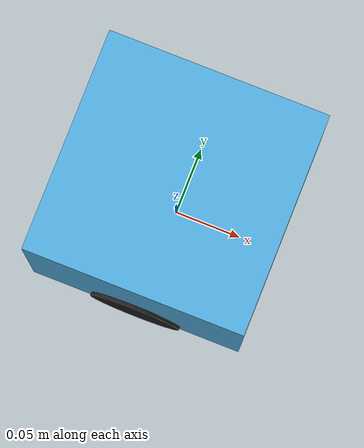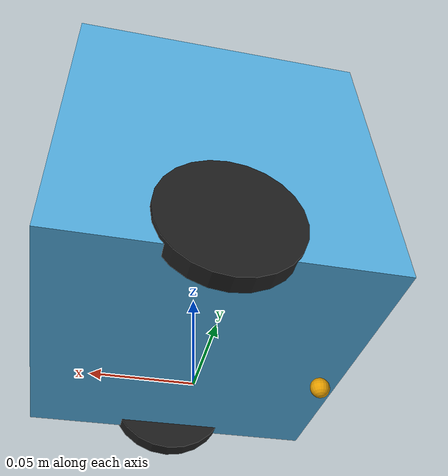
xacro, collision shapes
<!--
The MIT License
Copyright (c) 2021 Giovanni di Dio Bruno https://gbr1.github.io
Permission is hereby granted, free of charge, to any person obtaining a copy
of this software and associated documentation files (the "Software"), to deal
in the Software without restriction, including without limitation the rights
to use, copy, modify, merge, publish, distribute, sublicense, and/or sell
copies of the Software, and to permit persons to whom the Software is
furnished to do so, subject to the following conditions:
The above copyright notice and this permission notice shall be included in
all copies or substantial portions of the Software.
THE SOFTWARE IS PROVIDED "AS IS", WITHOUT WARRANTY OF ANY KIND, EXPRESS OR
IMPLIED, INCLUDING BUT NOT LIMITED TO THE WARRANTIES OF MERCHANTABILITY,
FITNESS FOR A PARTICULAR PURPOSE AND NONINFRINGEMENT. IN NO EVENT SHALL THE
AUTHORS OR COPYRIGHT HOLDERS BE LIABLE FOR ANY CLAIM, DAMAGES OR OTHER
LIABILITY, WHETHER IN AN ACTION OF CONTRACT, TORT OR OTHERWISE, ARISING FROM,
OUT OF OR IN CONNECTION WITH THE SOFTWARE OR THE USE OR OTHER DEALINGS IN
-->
<?xml version="1.0"?>
<robot name="racoon" xmlns:xacro="http://ros.org/wiki/xacro">
    <xacro:include filename="$(find raccoon_description)/urdf/raccoon.urdf.xacro" />
    <xacro:raccoon_robot />
</robot>

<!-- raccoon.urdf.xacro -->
<robot xmlns:xacro="http://www.ros.org/wiki/xacro" name="raccoon_robot">

    <xacro:include filename="$(find raccoon_description)/urdf/d435.urdf.xacro" />
    <xacro:include filename="$(find raccoon_description)/urdf/wheel.urdf.xacro" />

     <xacro:property name="path_meshes" value="package://raccoon_description/meshes" />

    <xacro:property name="M_PI" value="3.1415926535897931" />
    <xacro:property name="M_PI_2" value="1.570796327" />

    <xacro:property name="wheel_radius" value="0.0345" />
    <xacro:property name="wheel_mount" value="0.0185" />

    <xacro:property name="d435_offset_x" value="0.066" />
    <xacro:property name="d435_offset_y" value="0" />
    <xacro:property name="d435_offset_z" value="0.0545" />

    <xacro:property name="wheel_tread" value="0.01" />
    <xacro:property name="wheel_radius" value="0.0345" />
    <xacro:property name="wheel_mass" value="0.200" />
    <xacro:property name="wheel_offset_x" value="0.0" />
    <xacro:property name="wheel_offset_y" value="0.0775" />
    <xacro:property name="wheel_offset_z" value="0.000" />

    <xacro:property name="chassis_mass" value="1.200" />
    <xacro:property name="chassis_size_x" value="0.160" />
    <xacro:property name="chassis_size_y" value="0.160" />
    <xacro:property name="chassis_size_z" value="0.130" />

    <xacro:macro name="raccoon_robot">

        <link name="base_footprint">
            <collision>
                <origin xyz="-0.065 0 0.005" rpy="0 0 0" />
                <geometry>
                    <sphere radius="0.005" />
                </geometry>
            </collision>
        </link>

        <link name="base_link">
            <visual>
                <origin rpy="0.0 0.0 ${-M_PI_2}" xyz="0.0 0.0 ${wheel_mount}"/>
                <geometry>
                    <mesh filename="${path_meshes}/raccoon_body.dae"/>
                </geometry>
            </visual>
            <collision>
                <origin xyz="0 0 0.06" rpy="0 0 0" />
                <geometry>
                    <box size="0.160 0.160 0.16" />
                </geometry>
            </collision>
            <inertia ixx="${chassis_mass*(chassis_size_y*chassis_size_y+chassis_size_z*chassis_size_z)}" ixy="0" ixz="0"
                         iyy="${chassis_mass*(chassis_size_x*chassis_size_x+chassis_size_z*chassis_size_z)}" iyz="0"
                         izz="${chassis_mass*(chassis_size_x*chassis_size_x+chassis_size_y*chassis_size_y)}" />
        </link>

        <joint name="base_footprint_joint" type="fixed">
            <origin xyz="0 0 ${wheel_radius}" rpy="0 0 0" />
            <parent link="base_footprint"/>
            <child link="base_link" />
        </joint>

        <xacro:d435 offset_x="${d435_offset_x}" offset_y="${d435_offset_y}" offset_z="${d435_offset_z}">
        </xacro:d435>

        <xacro:wheel lr="left" parent="base_link" offset_x="${wheel_offset_x}" offset_y="${wheel_offset_y}" offset_z="${wheel_offset_z}" flip="1">
        </xacro:wheel>

        <xacro:wheel lr="right" parent="base_link" offset_x="${wheel_offset_x}" offset_y="${-wheel_offset_y}" offset_z="${wheel_offset_z}" flip="0">
        </xacro:wheel>

   </xacro:macro>

    <!-- Differential drive controller -->
    <gazebo>
        <plugin name="differential_drive_controller" filename="libgazebo_ros_diff_drive.so">
            <legacyMode>true</legacyMode>
            <rosDebugLevel>Debug</rosDebugLevel>
            <publishWheelTF>false</publishWheelTF>
            <robotNamespace>/</robotNamespace>
            <publishTf>1</publishTf>
            <publishWheelJointState>false</publishWheelJointState>
            <alwaysOn>true</alwaysOn>
            <updateRate>100.0</updateRate>
            <!-- strange gazebo annotation -->
            <leftJoint>right_joint</leftJoint>
            <rightJoint>left_joint</rightJoint>
            <wheelSeparation>${2*wheel_offset_y}</wheelSeparation>
            <wheelDiameter>${2*wheel_radius}</wheelDiameter>
            <broadcastTF>1</broadcastTF>
            <wheelTorque>1</wheelTorque>
            <wheelAcceleration>1.8</wheelAcceleration>
            <commandTopic>/raccoon_velocity_controller/cmd_vel</commandTopic>
            <publishOdomTF>false</publishOdomTF>
            <odometryFrame>odom</odometryFrame>
            <odometryTopic>/raccoon_velocity_controller/odom</odometryTopic>
            <odometrySource>world</odometrySource>
            <robotBaseFrame>base_footprint</robotBaseFrame>
        </plugin>
    </gazebo>

</robot>

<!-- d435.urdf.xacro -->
<robot name="d435" xmlns:xacro="http://ros.org/wiki/xacro">
    <xacro:macro name="d435" params="offset_x offset_y offset_z">

        <xacro:property name="d435_cam_depth_to_left_ir_offset" value="0.0"/>
        <xacro:property name="d435_cam_depth_to_right_ir_offset" value="-0.050"/>
        <xacro:property name="d435_cam_depth_to_color_offset" value="0.015"/>

        <xacro:property name="d435_cam_width" value="0.090"/>
        <xacro:property name="d435_cam_height" value="0.025"/>
        <xacro:property name="d435_cam_depth" value="0.02505"/>
        <xacro:property name="d435_cam_mount_from_center_offset" value="0.0149"/>

        <xacro:property name="d435_cam_depth_px" value="${d435_cam_mount_from_center_offset}"/>
        <xacro:property name="d435_cam_depth_py" value="0.0175"/>
        <xacro:property name="d435_cam_depth_pz" value="${d435_cam_height/2}"/>

        <joint name="camera_joint" type="fixed">
            <parent link="base_link"/>
            <child link="camera_bottom_screw_frame" />
            <origin rpy="0.0 0.0 0" xyz="${offset_x} ${offset_y} ${offset_z}"/>
        </joint>

        <link name="camera_bottom_screw_frame"/>
        <gazebo reference="camera_bottom_screw_frame">
            <turnGravityOff>false</turnGravityOff>
        </gazebo>

        <joint name="camera_link_joint" type="fixed">
            <origin xyz="0 ${d435_cam_depth_py} ${d435_cam_depth_pz}" rpy="0 0 0"/>
            <parent link="camera_bottom_screw_frame"/>
            <child link="camera_link" />
        </joint>

        <link name="camera_link">
        <inertial>
            <mass value="0.180" />
            <origin xyz="0 0 0" />
            <inertia ixx="0.003881243" ixy="0.0" ixz="0.0" iyy="0.000498940" iyz="0.0" izz="0.003879257" />
        </inertial>
        </link>
        <gazebo reference="camera_link">
            <turnGravityOff>false</turnGravityOff>
            <material>Gazebo/Grey</material>
        </gazebo>

        <!-- camera depth joints and links -->
        <joint name="camera_depth_joint" type="fixed">
            <origin xyz="0 0 0" rpy="0 0 0"/>
            <parent link="camera_link"/>
            <child link="camera_depth_frame" />
        </joint>
        <link name="camera_depth_frame"/>
        <gazebo reference="camera_depth_frame">
            <turnGravityOff>false</turnGravityOff>
        </gazebo>

        <joint name="camera_depth_optical_joint" type="fixed">
            <origin xyz="0 0 0" rpy="${-M_PI_2} 0 ${-M_PI_2}" />
            <parent link="camera_depth_frame" />
            <child link="camera_depth_optical_frame" />
        </joint>
        <link name="camera_depth_optical_frame"/>
        <gazebo reference="camera_depth_optical_frame">
            <turnGravityOff>false</turnGravityOff>
        </gazebo>

        <!-- camera left IR joints and links -->
        <joint name="camera_left_ir_joint" type="fixed">
            <origin xyz="0 ${d435_cam_depth_to_left_ir_offset} 0" rpy="0 0 0" />
            <parent link="camera_depth_frame" />
            <child link="camera_left_ir_frame" />
        </joint>
        <link name="camera_left_ir_frame"/>
        <gazebo reference="camera_left_ir_frame">
            <turnGravityOff>false</turnGravityOff>
        </gazebo>

        <joint name="camera_left_ir_optical_joint" type="fixed">
            <origin xyz="0 0 0" rpy="${-M_PI_2} 0 ${-M_PI_2}" />
            <parent link="camera_left_ir_frame" />
            <child link="camera_left_ir_optical_frame" />
        </joint>
        <link name="camera_left_ir_optical_frame"/>
        <gazebo reference="camera_left_ir_optical_frame">
            <turnGravityOff>false</turnGravityOff>
        </gazebo>

        <!-- camera right IR joints and links -->
        <joint name="camera_right_ir_joint" type="fixed">
            <origin xyz="0 ${d435_cam_depth_to_right_ir_offset} 0" rpy="0 0 0" />
            <parent link="camera_depth_frame" />
            <child link="camera_right_ir_frame" />
        </joint>
        <link name="camera_right_ir_frame"/>
        <gazebo reference="camera_right_ir_frame">
            <turnGravityOff>false</turnGravityOff>
        </gazebo>

        <joint name="camera_right_ir_optical_joint" type="fixed">
            <origin xyz="0 0 0" rpy="${-M_PI_2} 0 ${-M_PI_2}" />
            <parent link="camera_right_ir_frame" />
            <child link="camera_right_ir_optical_frame" />
        </joint>
        <link name="camera_right_ir_optical_frame"/>
        <gazebo reference="camera_right_ir_optical_frame">
            <turnGravityOff>false</turnGravityOff>
        </gazebo>

        <!-- camera color joints and links -->
        <joint name="camera_color_joint" type="fixed">
            <origin xyz="0 ${d435_cam_depth_to_color_offset} 0" rpy="0 0 0" />
            <parent link="camera_depth_frame" />
            <child link="camera_color_frame" />
        </joint>
        <link name="camera_color_frame"/>
        <gazebo reference="camera_color_frame">
            <turnGravityOff>false</turnGravityOff>
        </gazebo>

        <joint name="camera_color_optical_joint" type="fixed">
            <origin xyz="0 0 0" rpy="${-M_PI_2} 0 ${-M_PI_2}" />
            <parent link="camera_color_frame" />
            <child link="camera_color_optical_frame" />
        </joint>
        <link name="camera_color_optical_frame"/>
        <gazebo reference="camera_color_optical_frame">
            <turnGravityOff>false</turnGravityOff>
        </gazebo>

        <link name="camera_depth_frame_gazebo"/>
        <joint name="gazebo_joint" type="fixed">
            <origin xyz="0 0 0" rpy="${-M_PI_2} 0 ${-M_PI_2}" />
            <parent link="camera_link" />
            <child link="camera_depth_frame_gazebo" />
        </joint>
        <gazebo reference="camera_depth_frame_gazebo">
            <turnGravityOff>false</turnGravityOff>
        </gazebo>

    </xacro:macro>

    <gazebo reference="camera_link">
        <sensor name="d435" type="depth">
            <update_rate>30</update_rate>
            <camera>
                <horizontal_fov>1.59174</horizontal_fov>
                <image>
                    <width>640</width>
                    <height>480</height>
                    <format>R8G8B8</format>
                </image>
                <clip>
                    <near>0.02</near>
                    <far>6</far>
                </clip>
            </camera>
            <plugin name="camera_plugin" filename="libgazebo_ros_openni_kinect.so">
                <visualize>true</visualize>
                <baseline>0.05</baseline>
                <alwaysOn>true</alwaysOn>
                <updateRate>0.0</updateRate>
                <cameraName>d435</cameraName>
                <imageTopicName>/camera/color/image_raw</imageTopicName>
                <cameraInfoTopicName>/camera/color/camera_info</cameraInfoTopicName>
                <depthImageTopicName>/camera/aligned_depth_to_color/image_raw</depthImageTopicName>
                <depthImageInfoTopicName>/camera/depth/camera_info</depthImageInfoTopicName>
                <pointCloudTopicName>/camera/depth/color/points</pointCloudTopicName>
                <frameName>camera_depth_frame_gazebo</frameName>
                <pointCloudCutoff>0.02</pointCloudCutoff>
                <distortionK1>0</distortionK1>
                <distortionK2>0</distortionK2>
                <distortionK3>0</distortionK3>
                <distortionT1>0</distortionT1>
                <distortionT2>0</distortionT2>
                <CxPrime>0</CxPrime>
                <Cx>0</Cx>
                <Cy>0</Cy>
                <focalLength>0</focalLength>
                <hackBaseline>0</hackBaseline>
            </plugin>
        </sensor>
    </gazebo>
</robot>

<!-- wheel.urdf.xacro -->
<robot name="wheel" xmlns:xacro="http://ros.org/wiki/xacro">
     <xacro:macro name="wheel" params="lr parent offset_x offset_y offset_z flip">
        <link name="${lr}_wheel">
            <inertial>
                <origin xyz="0 0 0" rpy="0 0 0" />
                <mass value="${wheel_mass}" />
                <inertia ixx="${0.0834*wheel_mass*(3.0*wheel_radius*wheel_radius+wheel_tread*wheel_tread)}" ixy="0" ixz="0"
                         iyy="${0.0834*wheel_mass*(3.0*wheel_radius*wheel_radius+wheel_tread*wheel_tread)}" iyz="0"
                         izz="${0.5*wheel_mass*wheel_radius*wheel_radius}" />
            </inertial>
            <visual>
                <origin xyz="0 ${-flip*0.010+0.005} 0" rpy="0 0 ${-flip*M_PI}" />
                <geometry>
                    <mesh filename="${path_meshes}/wheel69.dae"/>
                </geometry>
            </visual>
            <collision>
                <origin xyz="0 0 0" rpy="${M_PI_2} 0 0" />
                <geometry>
                    <cylinder length="${wheel_tread}" radius="${wheel_radius}" />
                </geometry>
            </collision>
        </link>

        <gazebo reference="${lr}_wheel">
            <mu1 value="1.0"/>
            <mu2 value="1.0"/>
            <kp  value="10000000.0" />
            <kd  value="1.0" />
            <fdir1 value="1 0 0"/>
            <turnGravityOff>false</turnGravityOff>
            <material>Gazebo/FlatBlack</material>
        </gazebo>

        <joint name="${lr}_joint" type="continuous">
            <parent link="${parent}" />
            <child link="${lr}_wheel" />
            <axis xyz="0 1 0" rpy="0  0" />
            <origin rpy="0.0 0.0 0.0" xyz="${offset_x} ${offset_y} ${offset_z}"/>
            <limit effort="100" velocity="100"/>
            <joint_properties damping="0.0" friction="0.0"/>
        </joint>

        <transmission name="${lr}_trans" type="SimpleTransmission">
		    <type>transmission_interface/SimpleTransmission</type>
            <joint name="${lr}_joint">
                <hardwareInterface>hardware_interface/VelocityJointInterface</hardwareInterface>
            </joint>
		    <actuator name="${lr}_motor">
			    <mechanicalReduction>1</mechanicalReduction>
                <hardwareInterface>VelocityJointInterface</hardwareInterface>
		    </actuator>
        </transmission>
     </xacro:macro>
</robot>
